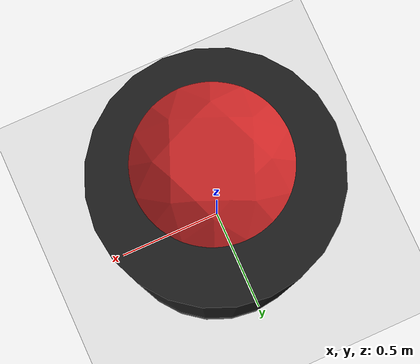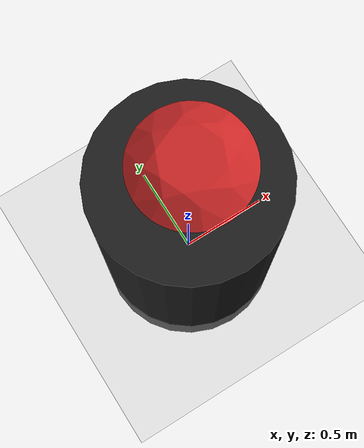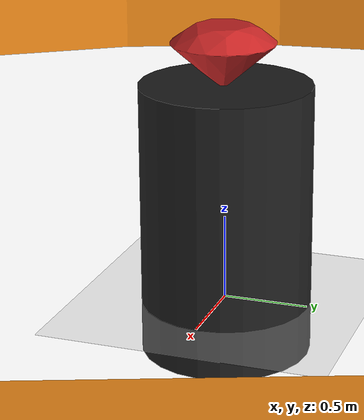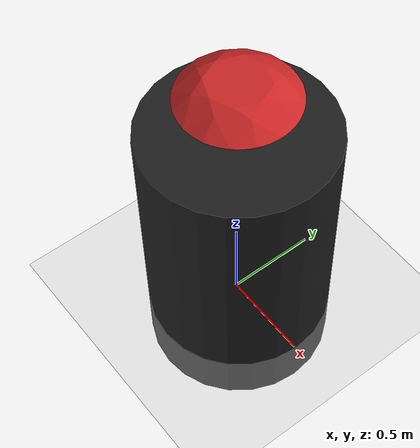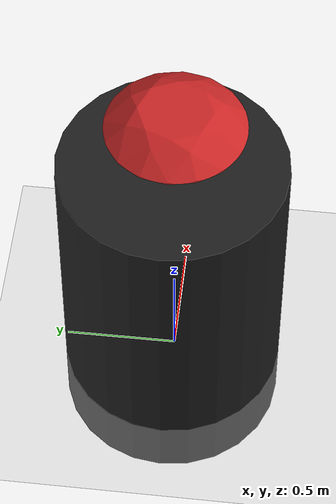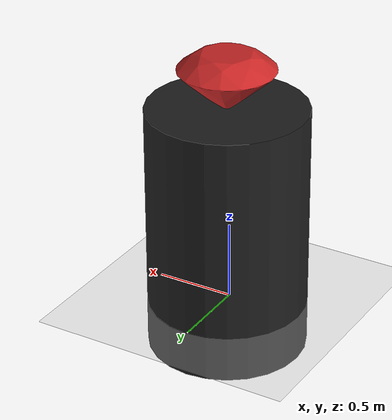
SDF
<sdf version="1.7">
 <world name="default">
  <light name="sun" type="directional">
   <pose>0 0 10 0 -0 0</pose>
   <diffuse>0.8 0.8 0.8 1</diffuse>
   <specular>0.2 0.2 0.2 1</specular>
   <attenuation>
    <range>1000</range>
    <constant>0.9</constant>
    <linear>0.01</linear>
    <quadratic>0.001</quadratic>
   </attenuation>
   <direction>-0.5 0.1 -0.9</direction>
   <spot><inner_angle>0</inner_angle><outer_angle>0</outer_angle><falloff>0</falloff></spot>
  </light>
  <model name="ground_plane">
   <static>1</static>
   <link name="link">
    <collision name="collision">
     <geometry><plane><normal>0 0 1</normal><size>100 100</size></plane></geometry>
     <surface>
      <contact><collide_bitmask>65535</collide_bitmask></contact>
      <friction><ode><mu>100</mu><mu2>50</mu2></ode></friction>
     </surface>
    </collision>
    <visual name="visual">
     <cast_shadows>0</cast_shadows>
     <geometry><plane><normal>0 0 1</normal><size>100 100</size></plane></geometry>
     <material>
      <script><uri>file://media/materials/scripts/gazebo.material</uri><name>Gazebo/Grey</name></script>
     </material>
    </visual>
   </link>
  </model>
  <gravity>0 0 -9.8</gravity>
  <magnetic_field>6e-06 2.3e-05 -4.2e-05</magnetic_field>
  <atmosphere type="adiabatic"/>
  <physics type="ode">
   <max_step_size>0.001</max_step_size>
   <real_time_factor>1</real_time_factor>
   <real_time_update_rate>1000</real_time_update_rate>
  </physics>
  <scene><ambient>0.4 0.4 0.4 1</ambient><background>0.7 0.7 0.7 1</background><shadows>1</shadows></scene>
  <spherical_coordinates>
   <surface_model>EARTH_WGS84</surface_model>
   <latitude_deg>0</latitude_deg>
   <longitude_deg>0</longitude_deg>
   <elevation>0</elevation>
   <heading_deg>0</heading_deg>
  </spherical_coordinates>
  <model name="secure_diamond">
   <link name="link_0">
    <inertial>
     <mass>1</mass>
     <inertia>
      <ixx>0.166667</ixx>
      <ixy>0</ixy>
      <ixz>0</ixz>
      <iyy>0.166667</iyy>
      <iyz>0</iyz>
      <izz>0.166667</izz>
     </inertia>
    </inertial>
    <pose>-0.008737 -0.003137 -0.59197 0 -0 0</pose>
    <visual name="visual">
     <geometry>
      <mesh>
       <uri>/home/luqman/drone_ws/src/drone_basic/worlds/meshes/circular.dae</uri>
       <scale>350 350 250</scale>
      </mesh>
     </geometry>
     <material>
      <lighting>1</lighting>
      <script><uri>file://media/materials/scripts/gazebo.material</uri><name>Gazebo/Orange</name></script>
      <shader type="pixel"><normal_map>__default__</normal_map></shader>
      <ambient>0.3 0.3 0.3 1</ambient>
      <diffuse>0.7 0.7 0.7 1</diffuse>
      <specular>0.01 0.01 0.01 1</specular>
      <emissive>0 0 0 1</emissive>
     </material>
    </visual>
    <collision name="collision">
     <geometry>
      <mesh>
       <uri>/home/luqman/drone_ws/src/drone_basic/worlds/meshes/circular.dae</uri>
       <scale>350 350 250</scale>
      </mesh>
     </geometry>
     <surface>
      <friction>
       <ode><mu>1</mu><mu2>1</mu2><fdir1>0 0 0</fdir1><slip1>0</slip1><slip2>0</slip2></ode>
       <torsional>
        <coefficient>1</coefficient>
        <patch_radius>0</patch_radius>
        <surface_radius>0</surface_radius>
        <use_patch_radius>1</use_patch_radius>
        <ode><slip>0</slip></ode>
       </torsional>
      </friction>
      <bounce><restitution_coefficient>0</restitution_coefficient><threshold>1e+06</threshold></bounce>
      <contact>
       <collide_without_contact>0</collide_without_contact>
       <collide_without_contact_bitmask>1</collide_without_contact_bitmask>
       <collide_bitmask>1</collide_bitmask>
       <ode>
        <soft_cfm>0</soft_cfm>
        <soft_erp>0.2</soft_erp>
        <kp>1e+13</kp>
        <kd>1</kd>
        <max_vel>0.01</max_vel>
        <min_depth>0</min_depth>
       </ode>
       <bullet>
        <split_impulse>1</split_impulse>
        <split_impulse_penetration_threshold>-0.01</split_impulse_penetration_threshold>
        <soft_cfm>0</soft_cfm>
        <soft_erp>0.2</soft_erp>
        <kp>1e+13</kp>
        <kd>1</kd>
       </bullet>
      </contact>
     </surface>
    </collision>
   </link>
   <link name="link_2">
    <inertial>
     <mass>1.59845</mass>
     <inertia>
      <ixx>0.440241</ixx>
      <ixy>0</ixy>
      <ixz>0</ixz>
      <iyy>0.440241</iyy>
      <iyz>0</iyz>
      <izz>0.199806</izz>
     </inertia>
    </inertial>
    <pose>-0.000158 0.007189 -0.09197 0 -0 0</pose>
    <visual name="visual">
     <geometry><cylinder><radius>0.5</radius><length>1.59844</length></cylinder></geometry>
     <material>
      <lighting>1</lighting>
      <script><uri>file://media/materials/scripts/gazebo.material</uri><name>Gazebo/Black</name></script>
      <shader type="pixel"><normal_map>__default__</normal_map></shader>
      <emissive>0 0 0 1</emissive>
      <ambient>0 0 0 1</ambient>
      <diffuse>0 0 0 1</diffuse>
      <specular>0.1 0.1 0.1 1</specular>
     </material>
    </visual>
    <collision name="collision">
     <geometry><cylinder><radius>0.5</radius><length>1.59844</length></cylinder></geometry>
     <surface>
      <friction>
       <ode><mu>1</mu><mu2>1</mu2><fdir1>0 0 0</fdir1><slip1>0</slip1><slip2>0</slip2></ode>
       <torsional>
        <coefficient>1</coefficient>
        <patch_radius>0</patch_radius>
        <surface_radius>0</surface_radius>
        <use_patch_radius>1</use_patch_radius>
        <ode><slip>0</slip></ode>
       </torsional>
      </friction>
      <bounce><restitution_coefficient>0</restitution_coefficient><threshold>1e+06</threshold></bounce>
      <contact>
       <collide_without_contact>0</collide_without_contact>
       <collide_without_contact_bitmask>1</collide_without_contact_bitmask>
       <collide_bitmask>1</collide_bitmask>
       <ode>
        <soft_cfm>0</soft_cfm>
        <soft_erp>0.2</soft_erp>
        <kp>1e+13</kp>
        <kd>1</kd>
        <max_vel>0.01</max_vel>
        <min_depth>0</min_depth>
       </ode>
       <bullet>
        <split_impulse>1</split_impulse>
        <split_impulse_penetration_threshold>-0.01</split_impulse_penetration_threshold>
        <soft_cfm>0</soft_cfm>
        <soft_erp>0.2</soft_erp>
        <kp>1e+13</kp>
        <kd>1</kd>
       </bullet>
      </contact>
     </surface>
    </collision>
   </link>
   <link name="link_3">
    <inertial>
     <mass>1</mass>
     <inertia>
      <ixx>0.166667</ixx>
      <ixy>0</ixy>
      <ixz>0</ixz>
      <iyy>0.166667</iyy>
      <iyz>0</iyz>
      <izz>0.166667</izz>
     </inertia>
    </inertial>
    <pose>0.008894 -0.004052 0.68394 0 -0 0</pose>
    <visual name="visual">
     <geometry>
      <mesh>
       <uri>/home/luqman/drone_ws/src/drone_basic/worlds/meshes/diamonds.dae</uri>
       <scale>1.5 1.5 1.5</scale>
      </mesh>
     </geometry>
     <material>
      <lighting>1</lighting>
      <script><uri>file://media/materials/scripts/gazebo.material</uri><name>Gazebo/Red</name></script>
      <shader type="pixel"><normal_map>__default__</normal_map></shader>
      <ambient>1 0 0 1</ambient>
      <diffuse>1 0 0 1</diffuse>
      <specular>0.1 0.1 0.1 1</specular>
      <emissive>0 0 0 1</emissive>
     </material>
    </visual>
    <collision name="collision">
     <geometry>
      <mesh>
       <uri>/home/luqman/drone_ws/src/drone_basic/worlds/meshes/diamonds.dae</uri>
       <scale>1.5 1.5 1.5</scale>
      </mesh>
     </geometry>
     <surface>
      <friction>
       <ode><mu>1</mu><mu2>1</mu2><fdir1>0 0 0</fdir1><slip1>0</slip1><slip2>0</slip2></ode>
       <torsional>
        <coefficient>1</coefficient>
        <patch_radius>0</patch_radius>
        <surface_radius>0</surface_radius>
        <use_patch_radius>1</use_patch_radius>
        <ode><slip>0</slip></ode>
       </torsional>
      </friction>
      <bounce><restitution_coefficient>0</restitution_coefficient><threshold>1e+06</threshold></bounce>
      <contact>
       <collide_without_contact>0</collide_without_contact>
       <collide_without_contact_bitmask>1</collide_without_contact_bitmask>
       <collide_bitmask>1</collide_bitmask>
       <ode>
        <soft_cfm>0</soft_cfm>
        <soft_erp>0.2</soft_erp>
        <kp>1e+13</kp>
        <kd>1</kd>
        <max_vel>0.01</max_vel>
        <min_depth>0</min_depth>
       </ode>
       <bullet>
        <split_impulse>1</split_impulse>
        <split_impulse_penetration_threshold>-0.01</split_impulse_penetration_threshold>
        <soft_cfm>0</soft_cfm>
        <soft_erp>0.2</soft_erp>
        <kp>1e+13</kp>
        <kd>1</kd>
       </bullet>
      </contact>
     </surface>
    </collision>
   </link>
   <joint name="link_2_JOINT_0" type="fixed">
    <parent>link_2</parent>
    <child>link_3</child>
    <physics>
     <ode><limit><cfm>0</cfm><erp>0.2</erp></limit><suspension><cfm>0</cfm><erp>0.2</erp></suspension></ode>
    </physics>
   </joint>
   <static>0</static>
   <pose>0.008873 0.003091 0.59197 0 -0 0</pose>
  </model>
 </world>
</sdf>
